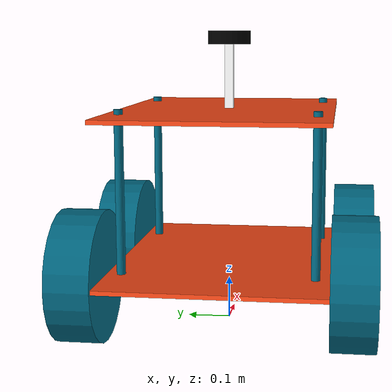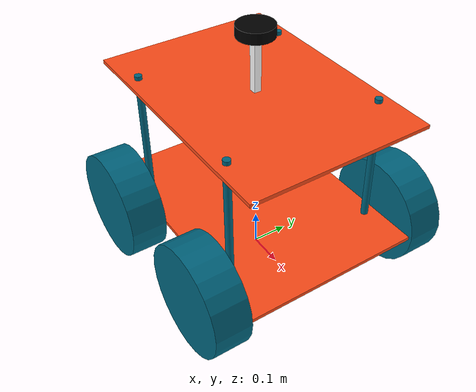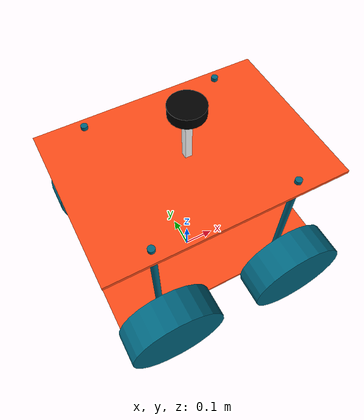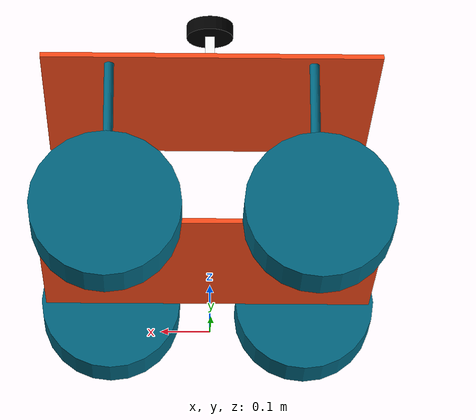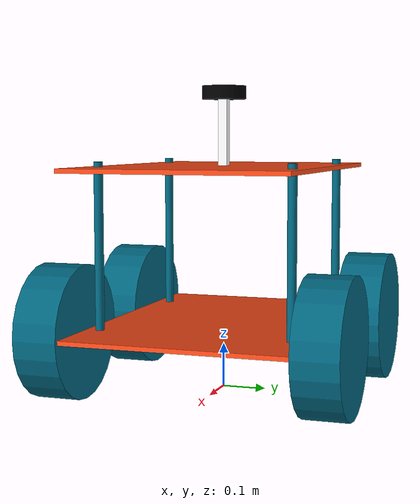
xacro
<?xml version='1.0'?>
<robot xmlns:xacro ="http://www.ros.org/wiki/xacro"  name="robot">

    <xacro:include filename="inertial_macros.xacro"/>
	<xacro:include filename="ros2_control.xacro"/>

    <material name="orange">
        <color rgba="1 0.3 0.1 1"/>
    </material>

    <material name="red">
        <color rgba="1 0 0 1"/>
    </material>

	<xacro:property name="chassis_length" value="0.7" />
	<xacro:property name="chassis_width" value="0.5" />
	<xacro:property name="chassis_height" value="0.01" />
	<xacro:property name="chassis_mass" value="12" />
	<xacro:property name="wheel_radius" value="0.15" />
	<xacro:property name="wheel_height" value="0.10" />
	<xacro:property name="wheel_mass" value="4" />

    <!--dummy link-->
	<link name="base_link"></link>

	<joint name="joint-base_footprint" type="fixed">
		<parent link="base_link"/>
		<child link="base_footprint"/>
		<origin xyz="0 0 0" rpy="0 0 0" />
	</joint>

	<link name="base_footprint"></link>

	<joint name="joint-base-chassis" type="fixed">
		<parent link="base_link"/>
		<child link="chassis-link"/>
		<origin xyz="0 0 ${wheel_radius}" rpy="0 0 0" />
	</joint>

	<!--chassis link-->
	<link name="chassis-link">
		<visual>
			<origin xyz="0 0 0" rpy="0 0 0" />
			<geometry>
				<box size="${chassis_length} ${chassis_width} ${chassis_height}" />
			</geometry>
			<material name="orange" />

		</visual>
		<collision>
			<origin xyz="0 0 0" rpy="0 0 0" />
			<geometry>
				<box size="${chassis_length} ${chassis_width} ${chassis_height}" />
			</geometry>
		</collision>

        <xacro:inertial_box mass="${chassis_mass}" x="${chassis_length}" y="${chassis_width}" z="${chassis_height}">
            <origin xyz="0 0.0 0" rpy="0 0 0"/>
        </xacro:inertial_box>

	</link>

	<gazebo reference="chassis-link">
        <material>Gazebo/Orange</material>
    </gazebo>

	<joint name="joint-chassis-upper-chassis" type="fixed">
		<parent link="base_link"/>
		<child link="upper-chassis-link"/>
		<origin xyz="0 0 ${0.508}" rpy="0 0 0" />
	</joint>

	<link name="upper-chassis-link">
		<visual>
			<origin xyz="0 0 0" rpy="0 0 0" />
			<geometry>
				<box size="${chassis_length} ${chassis_width} ${chassis_height}" />
			</geometry>
			<material name="orange" />

		</visual>
		<collision>
			<origin xyz="0 0 0" rpy="0 0 0" />
			<geometry>
				<box size="${chassis_length} ${chassis_width} ${chassis_height}" />
			</geometry>
		</collision>

	</link>

	<gazebo reference="upper-chassis-link">
        <material>Gazebo/Orange</material>
    </gazebo>

    <material name="blue">
		<color rgba="0 0.4 0.5 1"/>
	</material>

	<material name="black">
		<color rgba="0 0 0 1"/>
	</material>

	<material name="white">
		<color rgba="1 1 1 1"/>
	</material>

	<xacro:macro name="stand" params="x_position y_position x_reflect y_reflect">
	<!-- ${x_position}-${y_position}-wheel-link -->

		<joint name="joint-chassis-${x_position}-${y_position}-stand" type="fixed">
			<parent link="base_link"/>
			<child link="${x_position}-${y_position}-stand-link"/>
			<origin xyz="${x_reflect*0.3*chassis_length} ${y_reflect*(chassis_width/3+wheel_height/2)} ${(wheel_radius*2)+0.04}" rpy="0 0 0" />
			<axis xyz="0 0 1" />
		</joint>

		<link name="${x_position}-${y_position}-stand-link">
			<visual>
				<origin xyz="0 0 0" rpy="0 0 0" />
				<geometry>
					<cylinder radius ="0.01"  length="${0.508-0.14}" />
				</geometry>
				<material name="blue" />
			</visual>
			<collision>
				<origin xyz="0 0 0" rpy="0 0 0" />
				<geometry>
					<cylinder radius ="0.01"  length="${0.58-0.15}" />
				</geometry>
			</collision>

		</link>

	</xacro:macro>

	<xacro:stand x_position="front" y_position="right" x_reflect="1" y_reflect="1" />
	<xacro:stand x_position="front" y_position="left" x_reflect="1" y_reflect="-1" />
	<xacro:stand x_position="rear" y_position="right" x_reflect="-1" y_reflect="1" />
	<xacro:stand x_position="rear" y_position="left" x_reflect="-1" y_reflect="-1" />

	<gazebo reference="front-right-stand-link">
        <material>Gazebo/Blue</material>
    </gazebo>
	<gazebo reference="front-left-stand-link">
        <material>Gazebo/Blue</material>
    </gazebo>
	<gazebo reference="rear-right-stand-link">
        <material>Gazebo/Blue</material>
    </gazebo>
	<gazebo reference="rear-left-stand-link">
        <material>Gazebo/Blue</material>
    </gazebo>

	<!--LEFT SIDE-->

	<joint name="front_left_wheel_joint" type="continuous">
        <parent link="base_link"/>
        <child link="front_left_wheel"/>
        <axis xyz="0 0 1"/>
        <origin xyz="${(1)*0.3*chassis_length} ${(-1)*(chassis_width/2+wheel_height/2)} ${wheel_radius}" rpy="${-pi/2} 0 0"/>
    </joint>

    <link name="front_left_wheel">
        <visual>
            <geometry>
                <cylinder radius="${wheel_radius}" length="${wheel_height}"/>
            </geometry>
            <material name="blue"/>
        </visual>

        <collision>
            <geometry>
                <cylinder radius="${wheel_radius}" length="${wheel_height}"/>
            </geometry>
        </collision>

        <xacro:inertial_cylinder mass="${wheel_mass}" length="${wheel_height}" radius="${wheel_radius}">
            <origin xyz="0.0 0.0 0.0" rpy="0.0 0.0 0.0"/>
        </xacro:inertial_cylinder>

    </link>

	<joint name="rear_left_wheel_joint" type="continuous">
        <parent link="base_link"/>
        <child link="rear_left_wheel"/>
        <axis xyz="0 0 1"/>
        <origin xyz="${(-1)*0.3*chassis_length} ${(-1)*(chassis_width/2+wheel_height/2)} ${wheel_radius}" rpy="${-pi/2} 0 0"/>
    </joint>

    <link name="rear_left_wheel">
        <visual>
            <geometry>
                <cylinder radius="${wheel_radius}" length="${wheel_height}"/>
            </geometry>
            <material name="blue"/>
        </visual>

        <collision>
            <geometry>
                <cylinder radius="${wheel_radius}" length="${wheel_height}"/>
            </geometry>
        </collision>

        <xacro:inertial_cylinder mass="${wheel_mass}" length="${wheel_height}" radius="${wheel_radius}">
            <origin xyz="0.0 0.0 0.0" rpy="0.0 0.0 0.0"/>
        </xacro:inertial_cylinder>

    </link>

	<!--RIGHT SIDE-->

	<joint name="front_right_wheel_joint" type="continuous">
        <parent link="base_link"/>
        <child link="front_right_wheel"/>
        <axis xyz="0 0 -1"/>
        <origin xyz="${(1)*0.3*chassis_length} ${(1)*(chassis_width/2+wheel_height/2)} ${wheel_radius}" rpy="${pi/2} 0 0"/>
    </joint>

    <link name="front_right_wheel">
        <visual>
            <geometry>
                <cylinder radius="${wheel_radius}" length="${wheel_height}"/>
            </geometry>
            <material name="blue"/>
        </visual>

        <collision>
            <geometry>
                <cylinder radius="${wheel_radius}" length="${wheel_height}"/>
            </geometry>
        </collision>

        <xacro:inertial_cylinder mass="${wheel_mass}" length="${wheel_height}" radius="${wheel_radius}">
            <origin xyz="0.0 0.0 0.0" rpy="0.0 0.0 0.0"/>
        </xacro:inertial_cylinder>

    </link>

	<joint name="rear_right_wheel_joint" type="continuous">
        <parent link="base_link"/>
        <child link="rear_right_wheel"/>
        <axis xyz="0 0 -1"/>
        <origin xyz="${(-1)*0.3*chassis_length} ${(1)*(chassis_width/2+wheel_height/2)} ${wheel_radius}" rpy="${pi/2} 0 0"/>
    </joint>

    <link name="rear_right_wheel">
        <visual>
            <geometry>
                <cylinder radius="${wheel_radius}" length="${wheel_height}"/>
            </geometry>
            <material name="blue"/>
        </visual>

        <collision>
            <geometry>
                <cylinder radius="${wheel_radius}" length="${wheel_height}"/>
            </geometry>
        </collision>

        <xacro:inertial_cylinder mass="${wheel_mass}" length="${wheel_height}" radius="${wheel_radius}">
            <origin xyz="0.0 0.0 0.0" rpy="0.0 0.0 0.0"/>
        </xacro:inertial_cylinder>

    </link>

	<gazebo reference="front_right_wheel">
        <material>Gazebo/Blue</material>
    </gazebo>
	<gazebo reference="front_left_wheel">
        <material>Gazebo/Blue</material>
    </gazebo>
	<gazebo reference="rear_right_wheel">
        <material>Gazebo/Blue</material>
    </gazebo>
	<gazebo reference="rear_left_wheel">
        <material>Gazebo/Blue</material>
    </gazebo>

	<joint name="joint-chassis-lidar-stand" type="fixed">
			<parent link="upper-chassis-link"/>
			<child link="chassis-lidar-stand-link"/>
			<origin xyz="0 0 ${0.17/2}" rpy="0 0 0" />
			<axis xyz="0 0 1" />
	</joint>

	<link name="chassis-lidar-stand-link">
			<visual>
				<geometry>
					<box size="0.02 0.02 0.17" />

				</geometry>
				<material name="white" />
			</visual>
			<collision>
				<origin xyz="0 0 0" rpy="0 0 0" />
				<geometry>
					<box size="0.02 0.02 0.17" />
				</geometry>
			</collision>

            <xacro:inertial_box mass="0.5" x="0.02" y="0.02" z="0.17">
            	<origin xyz="0 0.0 0" rpy="0 0 0"/>
        	</xacro:inertial_box>

	</link>

	<gazebo reference="chassis-lidar-stand-link">
        <material>Gazebo/White</material>
    </gazebo>

	<gazebo reference="chassis-lidar-stand-link">
        <material>Gazebo/White</material>
    </gazebo>

	<joint name="joint-chassis-lidar" type="fixed">
		<parent link="chassis-lidar-stand-link"/>
		<child link="lidar_link"/>
		<origin xyz="0 0 ${0.17/2}" rpy="0 0 0" />
	</joint>

    <link name="lidar_link">
		<visual>
			<origin xyz="0 0 0" rpy="0 0 0" />
			<geometry>
				<cylinder radius="0.05" length="0.03" />
			</geometry>
			<material name="black">
				<color rgba="0 0 0 1"/>
			</material>
		</visual>
		<collision>
			<origin xyz="0 0 0" rpy="0 0 0" />
			<geometry>
				<cylinder radius="0.05" length="0.03" />
			</geometry>
		</collision>

		<xacro:inertial_cylinder mass="0.3" length="0.03" radius="0.05">
            <origin xyz="0.0 0.0 0.0" rpy="0.0 0.0 0.0"/>
        </xacro:inertial_cylinder>

	</link>

	<gazebo reference="lidar_link">
        <sensor name="laser" type="ray">
        <pose> 0 0 0 0 0 0 </pose>
        <visualize>false</visualize>
        <update_rate>50</update_rate>
        <ray>
            <scan>
                <horizontal>
                    <samples>360</samples>
                    <min_angle>-3.14</min_angle>
                    <max_angle>3.14</max_angle>
                </horizontal>
            </scan>
            <range>
                <min>0.3</min>
                <max>12</max>
            </range>
        </ray>
        <plugin name="lidar_controller" filename="libgazebo_ros_ray_sensor.so">
            <ros>
                <argument>~/out:=/scan</argument>
            </ros>
            <output_type>sensor_msgs/LaserScan</output_type>
            <frame_name>lidar_link</frame_name>
        </plugin>

        </sensor>

    </gazebo>

	<gazebo reference="lidar_ink">
        <material>Gazebo/Black</material>
    </gazebo>

</robot>
